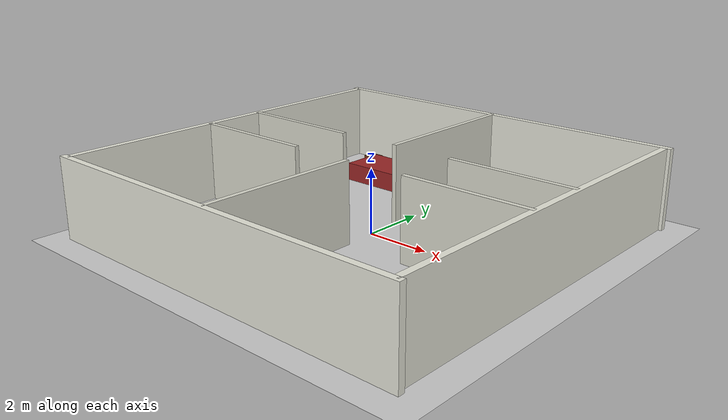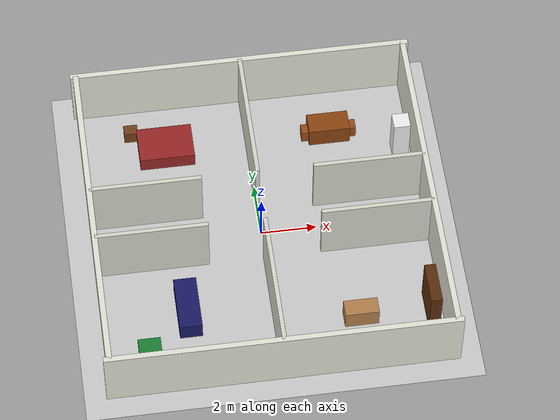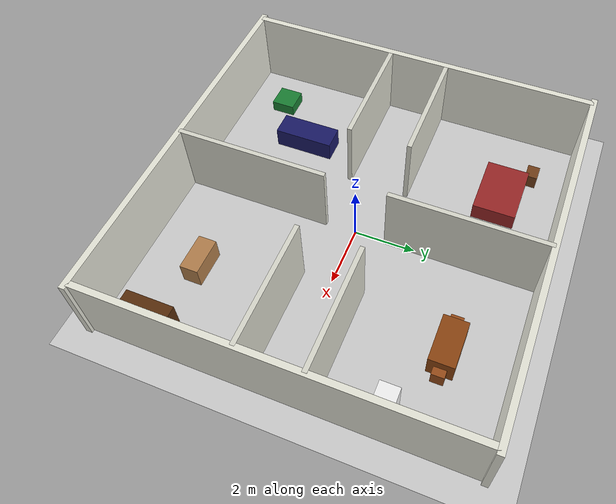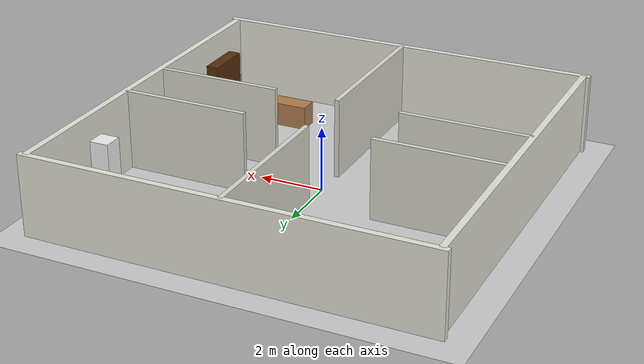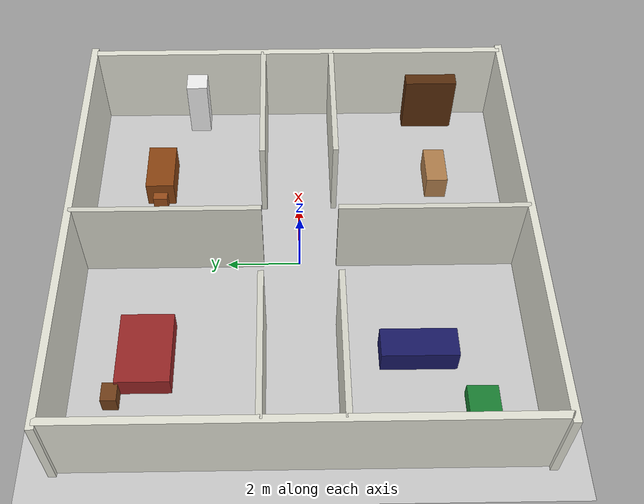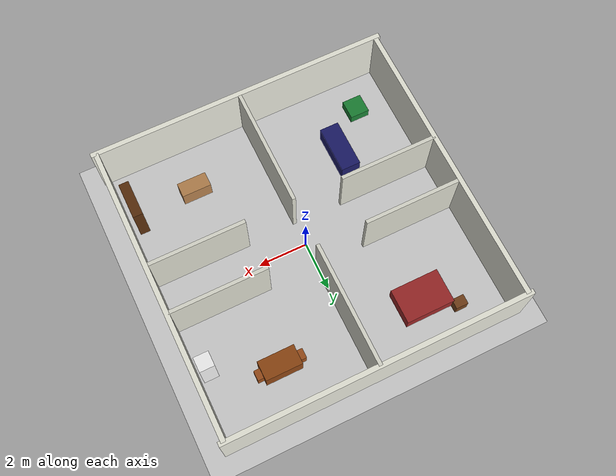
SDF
<?xml version="1.0" ?>
<sdf version="1.8">
  <world name="lab2_world">

    <!-- Физика -->
    <physics name="1ms" type="ignored">
      <max_step_size>0.001</max_step_size>
      <real_time_factor>1.0</real_time_factor>
    </physics>

    <!-- Плагины мира (обязательны для Gazebo Harmonic) -->
    <plugin filename="gz-sim-physics-system" name="gz::sim::systems::Physics"/>
    <plugin filename="gz-sim-user-commands-system" name="gz::sim::systems::UserCommands"/>
    <plugin filename="gz-sim-scene-broadcaster-system" name="gz::sim::systems::SceneBroadcaster"/>
    <plugin filename="gz-sim-sensors-system" name="gz::sim::systems::Sensors">
      <render_engine>ogre2</render_engine>
    </plugin>
    <plugin filename="gz-sim-contact-system" name="gz::sim::systems::Contact"/>

    <!-- Освещение -->
    <light type="directional" name="sun">
      <cast_shadows>true</cast_shadows>
      <pose>0 0 10 0 0 0</pose>
      <diffuse>0.8 0.8 0.8 1</diffuse>
      <specular>0.2 0.2 0.2 1</specular>
      <direction>-0.5 0.1 -0.9</direction>
    </light>

    <!-- Пол -->
    <model name="ground_plane">
      <static>true</static>
      <link name="link">
        <collision name="collision">
          <geometry><plane><normal>0 0 1</normal><size>100 100</size></plane></geometry>
        </collision>
        <visual name="visual">
          <geometry><plane><normal>0 0 1</normal><size>100 100</size></plane></geometry>
          <material>
            <ambient>0.8 0.8 0.8 1</ambient>
            <diffuse>0.8 0.8 0.8 1</diffuse>
          </material>
        </visual>
      </link>
    </model>

    <!--              ВНЕШНИЕ СТЕНЫ 12x12              -->

    <!-- Северная стена (вдоль Y=6) -->
    <model name="wall_north">
      <static>true</static>
      <pose>0 6 1.25 0 0 0</pose>
      <link name="link">
        <collision name="col"><geometry><box><size>12.4 0.2 2.5</size></box></geometry></collision>
        <visual name="vis"><geometry><box><size>12.4 0.2 2.5</size></box></geometry>
          <material><ambient>0.9 0.9 0.85 1</ambient><diffuse>0.9 0.9 0.85 1</diffuse></material>
        </visual>
      </link>
    </model>

    <!-- Южная стена (вдоль Y=-6) -->
    <model name="wall_south">
      <static>true</static>
      <pose>0 -6 1.25 0 0 0</pose>
      <link name="link">
        <collision name="col"><geometry><box><size>12.4 0.2 2.5</size></box></geometry></collision>
        <visual name="vis"><geometry><box><size>12.4 0.2 2.5</size></box></geometry>
          <material><ambient>0.9 0.9 0.85 1</ambient><diffuse>0.9 0.9 0.85 1</diffuse></material>
        </visual>
      </link>
    </model>

    <!-- Западная стена (вдоль X=-6) -->
    <model name="wall_west">
      <static>true</static>
      <pose>-6 0 1.25 0 0 0</pose>
      <link name="link">
        <collision name="col"><geometry><box><size>0.2 12 2.5</size></box></geometry></collision>
        <visual name="vis"><geometry><box><size>0.2 12 2.5</size></box></geometry>
          <material><ambient>0.9 0.9 0.85 1</ambient><diffuse>0.9 0.9 0.85 1</diffuse></material>
        </visual>
      </link>
    </model>

    <!-- Восточная стена (вдоль X=6) -->
    <model name="wall_east">
      <static>true</static>
      <pose>6 0 1.25 0 0 0</pose>
      <link name="link">
        <collision name="col"><geometry><box><size>0.2 12 2.5</size></box></geometry></collision>
        <visual name="vis"><geometry><box><size>0.2 12 2.5</size></box></geometry>
          <material><ambient>0.9 0.9 0.85 1</ambient><diffuse>0.9 0.9 0.85 1</diffuse></material>
        </visual>
      </link>
    </model>

    <!--     ВНУТРЕННИЕ СТЕНЫ (4 комнаты + коридор)    -->

    <!-- Горизонтальная стена верхняя (Y=1), левая часть с проёмом -->
    <model name="inner_h_top_left">
      <static>true</static>
      <pose>-4 1 1.25 0 0 0</pose>
      <link name="link">
        <collision name="col"><geometry><box><size>4 0.15 2.5</size></box></geometry></collision>
        <visual name="vis"><geometry><box><size>4 0.15 2.5</size></box></geometry>
          <material><ambient>0.85 0.85 0.8 1</ambient><diffuse>0.85 0.85 0.8 1</diffuse></material>
        </visual>
      </link>
    </model>

    <!-- Горизонтальная стена верхняя (Y=1), правая часть с проёмом -->
    <model name="inner_h_top_right">
      <static>true</static>
      <pose>4 1 1.25 0 0 0</pose>
      <link name="link">
        <collision name="col"><geometry><box><size>4 0.15 2.5</size></box></geometry></collision>
        <visual name="vis"><geometry><box><size>4 0.15 2.5</size></box></geometry>
          <material><ambient>0.85 0.85 0.8 1</ambient><diffuse>0.85 0.85 0.8 1</diffuse></material>
        </visual>
      </link>
    </model>

    <!-- Горизонтальная стена нижняя (Y=-1), левая часть с проёмом -->
    <model name="inner_h_bot_left">
      <static>true</static>
      <pose>-4 -1 1.25 0 0 0</pose>
      <link name="link">
        <collision name="col"><geometry><box><size>4 0.15 2.5</size></box></geometry></collision>
        <visual name="vis"><geometry><box><size>4 0.15 2.5</size></box></geometry>
          <material><ambient>0.85 0.85 0.8 1</ambient><diffuse>0.85 0.85 0.8 1</diffuse></material>
        </visual>
      </link>
    </model>

    <!-- Горизонтальная стена нижняя (Y=-1), правая часть с проёмом -->
    <model name="inner_h_bot_right">
      <static>true</static>
      <pose>4 -1 1.25 0 0 0</pose>
      <link name="link">
        <collision name="col"><geometry><box><size>4 0.15 2.5</size></box></geometry></collision>
        <visual name="vis"><geometry><box><size>4 0.15 2.5</size></box></geometry>
          <material><ambient>0.85 0.85 0.8 1</ambient><diffuse>0.85 0.85 0.8 1</diffuse></material>
        </visual>
      </link>
    </model>

    <!-- Вертикальная стена центральная (X=0), верхняя часть -->
    <model name="inner_v_top">
      <static>true</static>
      <pose>0 3.5 1.25 0 0 0</pose>
      <link name="link">
        <collision name="col"><geometry><box><size>0.15 5 2.5</size></box></geometry></collision>
        <visual name="vis"><geometry><box><size>0.15 5 2.5</size></box></geometry>
          <material><ambient>0.85 0.85 0.8 1</ambient><diffuse>0.85 0.85 0.8 1</diffuse></material>
        </visual>
      </link>
    </model>

    <!-- Вертикальная стена центральная (X=0), нижняя часть -->
    <model name="inner_v_bot">
      <static>true</static>
      <pose>0 -3.5 1.25 0 0 0</pose>
      <link name="link">
        <collision name="col"><geometry><box><size>0.15 5 2.5</size></box></geometry></collision>
        <visual name="vis"><geometry><box><size>0.15 5 2.5</size></box></geometry>
          <material><ambient>0.85 0.85 0.8 1</ambient><diffuse>0.85 0.85 0.8 1</diffuse></material>
        </visual>
      </link>
    </model>

    <!--         ИНТЕРЬЕРНЫЕ ОБЪЕКТЫ (8 штук)          -->

    <!-- 1. Обеденный стол (Кухня) — коричневый -->
    <model name="dining_table">
      <static>true</static>
      <pose>3 4 0.4 0 0 0</pose>
      <link name="link">
        <collision name="col"><geometry><box><size>1.5 0.8 0.8</size></box></geometry></collision>
        <visual name="vis"><geometry><box><size>1.5 0.8 0.8</size></box></geometry>
          <material><ambient>0.55 0.27 0.07 1</ambient><diffuse>0.55 0.27 0.07 1</diffuse></material>
        </visual>
      </link>
    </model>

    <!-- 2. Стул 1 (Кухня) -->
    <model name="chair_1">
      <static>true</static>
      <pose>2.2 4 0.25 0 0 0</pose>
      <link name="link">
        <collision name="col"><geometry><box><size>0.4 0.4 0.5</size></box></geometry></collision>
        <visual name="vis"><geometry><box><size>0.4 0.4 0.5</size></box></geometry>
          <material><ambient>0.6 0.3 0.1 1</ambient><diffuse>0.6 0.3 0.1 1</diffuse></material>
        </visual>
      </link>
    </model>

    <!-- 3. Стул 2 (Кухня) -->
    <model name="chair_2">
      <static>true</static>
      <pose>3.8 4 0.25 0 0 0</pose>
      <link name="link">
        <collision name="col"><geometry><box><size>0.4 0.4 0.5</size></box></geometry></collision>
        <visual name="vis"><geometry><box><size>0.4 0.4 0.5</size></box></geometry>
          <material><ambient>0.6 0.3 0.1 1</ambient><diffuse>0.6 0.3 0.1 1</diffuse></material>
        </visual>
      </link>
    </model>

    <!-- 4. Диван (Гостиная) — тёмно-синий -->
    <model name="sofa">
      <static>true</static>
      <pose>-3 -3 0.35 0 0 1.5708</pose>
      <link name="link">
        <collision name="col"><geometry><box><size>2.0 0.8 0.7</size></box></geometry></collision>
        <visual name="vis"><geometry><box><size>2.0 0.8 0.7</size></box></geometry>
          <material><ambient>0.1 0.1 0.4 1</ambient><diffuse>0.1 0.1 0.4 1</diffuse></material>
        </visual>
      </link>
    </model>

    <!-- 5. Книжный шкаф (Кабинет) — тёмное дерево -->
    <model name="bookshelf">
      <static>true</static>
      <pose>5.5 -4 0.9 0 0 0</pose>
      <link name="link">
        <collision name="col"><geometry><box><size>0.4 1.5 1.8</size></box></geometry></collision>
        <visual name="vis"><geometry><box><size>0.4 1.5 1.8</size></box></geometry>
          <material><ambient>0.35 0.18 0.05 1</ambient><diffuse>0.35 0.18 0.05 1</diffuse></material>
        </visual>
      </link>
    </model>

    <!-- 6. Рабочий стол (Кабинет) -->
    <model name="desk">
      <static>true</static>
      <pose>3 -4 0.375 0 0 0</pose>
      <link name="link">
        <collision name="col"><geometry><box><size>1.2 0.6 0.75</size></box></geometry></collision>
        <visual name="vis"><geometry><box><size>1.2 0.6 0.75</size></box></geometry>
          <material><ambient>0.7 0.5 0.3 1</ambient><diffuse>0.7 0.5 0.3 1</diffuse></material>
        </visual>
      </link>
    </model>

    <!-- 7. Кровать (Спальня) — красноватая -->
    <model name="bed">
      <static>true</static>
      <pose>-3 4 0.3 0 0 0</pose>
      <link name="link">
        <collision name="col"><geometry><box><size>2.0 1.4 0.6</size></box></geometry></collision>
        <visual name="vis"><geometry><box><size>2.0 1.4 0.6</size></box></geometry>
          <material><ambient>0.6 0.15 0.15 1</ambient><diffuse>0.6 0.15 0.15 1</diffuse></material>
        </visual>
      </link>
    </model>

    <!-- 8. Тумбочка (Спальня) -->
    <model name="nightstand">
      <static>true</static>
      <pose>-4.2 4.8 0.25 0 0 0</pose>
      <link name="link">
        <collision name="col"><geometry><box><size>0.5 0.4 0.5</size></box></geometry></collision>
        <visual name="vis"><geometry><box><size>0.5 0.4 0.5</size></box></geometry>
          <material><ambient>0.45 0.25 0.1 1</ambient><diffuse>0.45 0.25 0.1 1</diffuse></material>
        </visual>
      </link>
    </model>

    <!-- 9. Холодильник (Кухня) — белый высокий -->
    <model name="fridge">
      <static>true</static>
      <pose>5.5 3 0.9 0 0 0</pose>
      <link name="link">
        <collision name="col"><geometry><box><size>0.6 0.6 1.8</size></box></geometry></collision>
        <visual name="vis"><geometry><box><size>0.6 0.6 1.8</size></box></geometry>
          <material><ambient>0.95 0.95 0.95 1</ambient><diffuse>0.95 0.95 0.95 1</diffuse></material>
        </visual>
      </link>
    </model>

    <!-- 10. Журнальный столик (Гостиная) — зелёный -->
    <model name="coffee_table">
      <static>true</static>
      <pose>-4.5 -4.5 0.2 0 0 0</pose>
      <link name="link">
        <collision name="col"><geometry><box><size>0.8 0.8 0.4</size></box></geometry></collision>
        <visual name="vis"><geometry><box><size>0.8 0.8 0.4</size></box></geometry>
          <material><ambient>0.1 0.5 0.2 1</ambient><diffuse>0.1 0.5 0.2 1</diffuse></material>
        </visual>
      </link>
    </model>

  </world>
</sdf>
